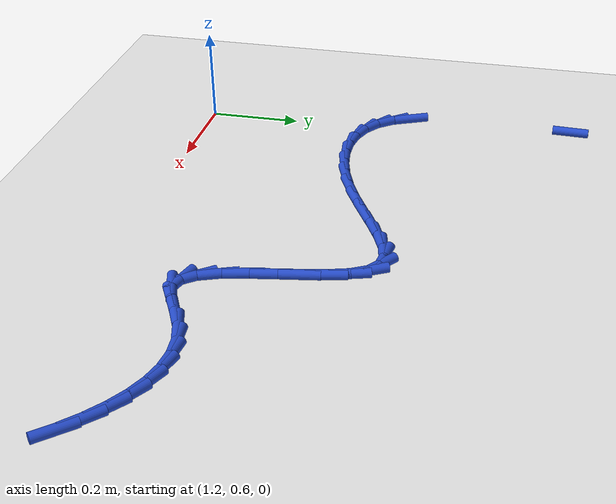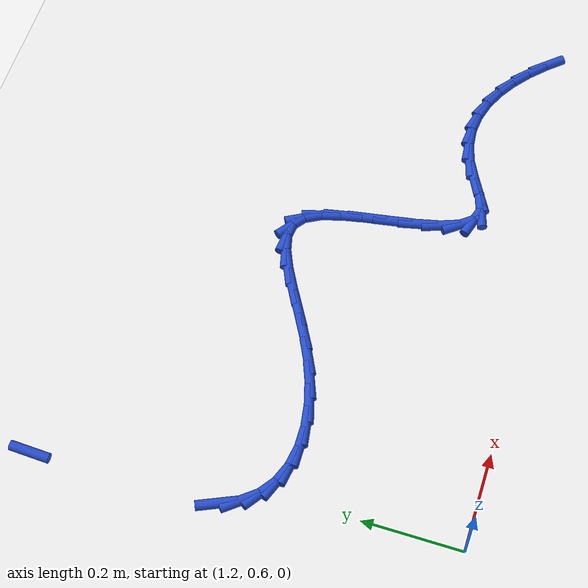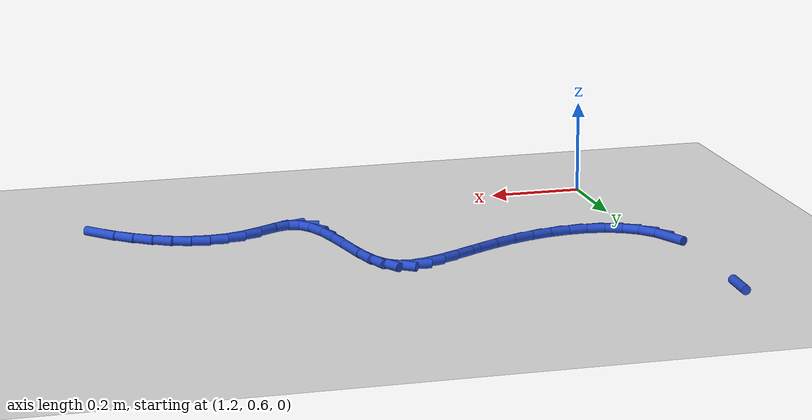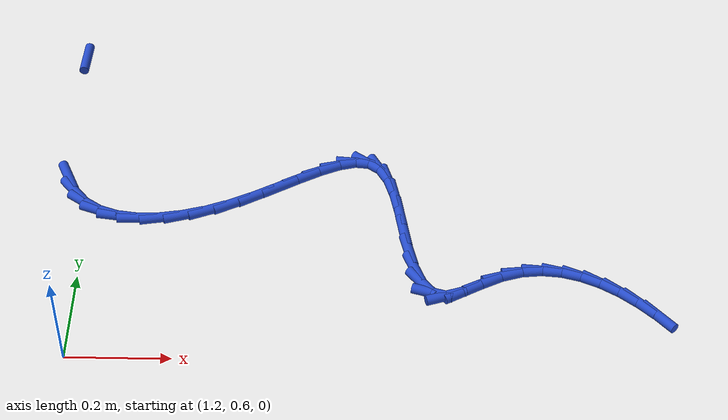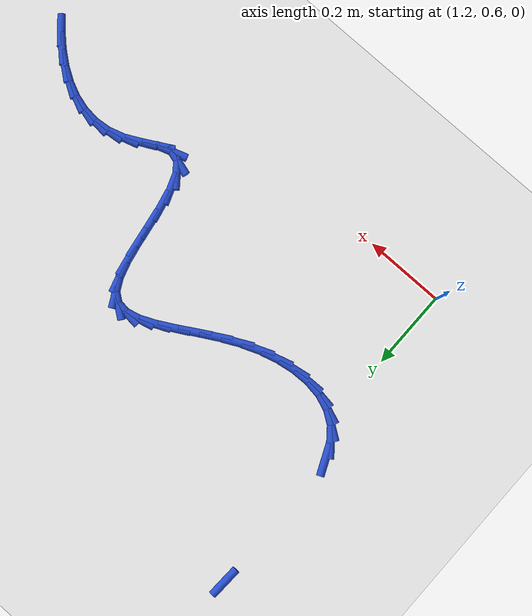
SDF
<sdf version="1.6">
 <world name="default">
  <model name="ground_plane">
   <static>1</static>
   <link name="link">
    <collision name="collision">
     <geometry><plane><normal>0 0 1</normal><size>100 100</size></plane></geometry>
     <surface><friction><ode><mu>100</mu><mu2>50</mu2></ode></friction></surface>
    </collision>
    <visual name="visual">
     <cast_shadows>0</cast_shadows>
     <geometry><plane><normal>0 0 1</normal><size>100 100</size></plane></geometry>
     <material>
      <script><uri>file://media/materials/scripts/gazebo.material</uri><name>Gazebo/WhiteGlow</name></script>
     </material>
    </visual>
   </link>
  </model>
  <model name="line">
   <link name="link_50">
    <pose>1.1397982147856793 1.4302542044344162 0.01 0 1.57 1.5299649811855243</pose>
    <collision name="collision">
     <geometry><cylinder><radius>0.01</radius><length>0.08</length></cylinder></geometry>
    </collision>
    <visual name="visual">
     <material>
      <script><name>Gazebo/Blue</name><uri>file://media/materials/scripts/gazebo.material</uri></script>
     </material>
     <geometry><cylinder><radius>0.01</radius><length>0.08</length></cylinder></geometry>
    </visual>
   </link>
   <link name="link_58">
    <pose>1.1491827335311606 1.0617973753093313 0.01 0 1.57 -1.15084781916414</pose>
    <collision name="collision">
     <geometry><cylinder><radius>0.01</radius><length>0.08</length></cylinder></geometry>
    </collision>
    <visual name="visual">
     <material>
      <script><name>Gazebo/Blue</name><uri>file://media/materials/scripts/gazebo.material</uri></script>
     </material>
     <geometry><cylinder><radius>0.01</radius><length>0.08</length></cylinder></geometry>
    </visual>
   </link>
   <link name="link_59">
    <pose>1.1669222420590948 1.0220681927908972 0.01 0 1.57 -0.893102407904086</pose>
    <collision name="collision">
     <geometry><cylinder><radius>0.01</radius><length>0.08</length></cylinder></geometry>
    </collision>
    <visual name="visual">
     <material>
      <script><name>Gazebo/Blue</name><uri>file://media/materials/scripts/gazebo.material</uri></script>
     </material>
     <geometry><cylinder><radius>0.01</radius><length>0.08</length></cylinder></geometry>
    </visual>
   </link>
   <link name="link_60">
    <pose>1.1917107442021784 0.991269450482976 0.01 0 1.57 -0.6149293826047683</pose>
    <collision name="collision">
     <geometry><cylinder><radius>0.01</radius><length>0.08</length></cylinder></geometry>
    </collision>
    <visual name="visual">
     <material>
      <script><name>Gazebo/Blue</name><uri>file://media/materials/scripts/gazebo.material</uri></script>
     </material>
     <geometry><cylinder><radius>0.01</radius><length>0.08</length></cylinder></geometry>
    </visual>
   </link>
   <link name="link_61">
    <pose>1.2228446530753259 0.9692801431016254 0.01 0 1.57 -0.36052347984355465</pose>
    <collision name="collision">
     <geometry><cylinder><radius>0.01</radius><length>0.08</length></cylinder></geometry>
    </collision>
    <visual name="visual">
     <material>
      <script><name>Gazebo/Blue</name><uri>file://media/materials/scripts/gazebo.material</uri></script>
     </material>
     <geometry><cylinder><radius>0.01</radius><length>0.08</length></cylinder></geometry>
    </visual>
   </link>
   <link name="link_62">
    <pose>1.2593010062048173 0.9555360755336589 0.01 0 1.57 -0.1476814513638622</pose>
    <collision name="collision">
     <geometry><cylinder><radius>0.01</radius><length>0.08</length></cylinder></geometry>
    </collision>
    <visual name="visual">
     <material>
      <script><name>Gazebo/Blue</name><uri>file://media/materials/scripts/gazebo.material</uri></script>
     </material>
     <geometry><cylinder><radius>0.01</radius><length>0.08</length></cylinder></geometry>
    </visual>
   </link>
   <link name="link_63">
    <pose>1.3000568411169346 0.9494730526658889 0.01 0 1.57 0.023928440807852468</pose>
    <collision name="collision">
     <geometry><cylinder><radius>0.01</radius><length>0.08</length></cylinder></geometry>
    </collision>
    <visual name="visual">
     <material>
      <script><name>Gazebo/Blue</name><uri>file://media/materials/scripts/gazebo.material</uri></script>
     </material>
     <geometry><cylinder><radius>0.01</radius><length>0.08</length></cylinder></geometry>
    </visual>
   </link>
   <link name="link_64">
    <pose>1.3440891953379583 0.9505268793851279 0.01 0 1.57 0.16288098369406465</pose>
    <collision name="collision">
     <geometry><cylinder><radius>0.01</radius><length>0.08</length></cylinder></geometry>
    </collision>
    <visual name="visual">
     <material>
      <script><name>Gazebo/Blue</name><uri>file://media/materials/scripts/gazebo.material</uri></script>
     </material>
     <geometry><cylinder><radius>0.01</radius><length>0.08</length></cylinder></geometry>
    </visual>
   </link>
   <link name="link_65">
    <pose>1.390375106394169 0.9581333605781887 0.01 0 1.57 0.2786653373070162</pose>
    <collision name="collision">
     <geometry><cylinder><radius>0.01</radius><length>0.08</length></cylinder></geometry>
    </collision>
    <visual name="visual">
     <material>
      <script><name>Gazebo/Blue</name><uri>file://media/materials/scripts/gazebo.material</uri></script>
     </material>
     <geometry><cylinder><radius>0.01</radius><length>0.08</length></cylinder></geometry>
    </visual>
   </link>
   <link name="link_66">
    <pose>1.437891611811849 0.9717283011318847 0.01 0 1.57 0.37923309288285934</pose>
    <collision name="collision">
     <geometry><cylinder><radius>0.01</radius><length>0.08</length></cylinder></geometry>
    </collision>
    <visual name="visual">
     <material>
      <script><name>Gazebo/Blue</name><uri>file://media/materials/scripts/gazebo.material</uri></script>
     </material>
     <geometry><cylinder><radius>0.01</radius><length>0.08</length></cylinder></geometry>
    </visual>
   </link>
   <link name="link_67">
    <pose>1.4856157495907836 0.9907475030734277 0.01 0 1.57 0.46410003968894264</pose>
    <collision name="collision">
     <geometry><cylinder><radius>0.01</radius><length>0.08</length></cylinder></geometry>
    </collision>
    <visual name="visual">
     <material>
      <script><name>Gazebo/Blue</name><uri>file://media/materials/scripts/gazebo.material</uri></script>
     </material>
     <geometry><cylinder><radius>0.01</radius><length>0.08</length></cylinder></geometry>
    </visual>
   </link>
   <link name="link_68">
    <pose>1.5325854659822682 1.0142589304577267 0.01 0 1.57 0.514105577774927</pose>
    <collision name="collision">
     <geometry><cylinder><radius>0.01</radius><length>0.08</length></cylinder></geometry>
    </collision>
    <visual name="visual">
     <material>
      <script><name>Gazebo/Blue</name><uri>file://media/materials/scripts/gazebo.material</uri></script>
     </material>
     <geometry><cylinder><radius>0.01</radius><length>0.08</length></cylinder></geometry>
    </visual>
   </link>
   <link name="link_69">
    <pose>1.5780680142461312 1.0399457132167835 0.01 0 1.57 0.5272373039017425</pose>
    <collision name="collision">
     <geometry><cylinder><radius>0.01</radius><length>0.08</length></cylinder></geometry>
    </collision>
    <visual name="visual">
     <material>
      <script><name>Gazebo/Blue</name><uri>file://media/materials/scripts/gazebo.material</uri></script>
     </material>
     <geometry><cylinder><radius>0.01</radius><length>0.08</length></cylinder></geometry>
    </visual>
   </link>
   <link name="link_70">
    <pose>1.6213846011531745 1.0651651444775267 0.01 0 1.57 0.49999067794593915</pose>
    <collision name="collision">
     <geometry><cylinder><radius>0.01</radius><length>0.08</length></cylinder></geometry>
    </collision>
    <visual name="visual">
     <material>
      <script><name>Gazebo/Blue</name><uri>file://media/materials/scripts/gazebo.material</uri></script>
     </material>
     <geometry><cylinder><radius>0.01</radius><length>0.08</length></cylinder></geometry>
    </visual>
   </link>
   <link name="link_71">
    <pose>1.6618564334741963 1.0872745173668839 0.01 0 1.57 0.41675768130560054</pose>
    <collision name="collision">
     <geometry><cylinder><radius>0.01</radius><length>0.08</length></cylinder></geometry>
    </collision>
    <visual name="visual">
     <material>
      <script><name>Gazebo/Blue</name><uri>file://media/materials/scripts/gazebo.material</uri></script>
     </material>
     <geometry><cylinder><radius>0.01</radius><length>0.08</length></cylinder></geometry>
    </visual>
   </link>
   <link name="link_72">
    <pose>1.6988047179799985 1.103631125011783 0.01 0 1.57 0.238491281110206</pose>
    <collision name="collision">
     <geometry><cylinder><radius>0.01</radius><length>0.08</length></cylinder></geometry>
    </collision>
    <visual name="visual">
     <material>
      <script><name>Gazebo/Blue</name><uri>file://media/materials/scripts/gazebo.material</uri></script>
     </material>
     <geometry><cylinder><radius>0.01</radius><length>0.08</length></cylinder></geometry>
    </visual>
   </link>
   <link name="link_73">
    <pose>1.7315506614413805 1.1115922605391524 0.01 0 1.57 -0.10998197587185295</pose>
    <collision name="collision">
     <geometry><cylinder><radius>0.01</radius><length>0.08</length></cylinder></geometry>
    </collision>
    <visual name="visual">
     <material>
      <script><name>Gazebo/Blue</name><uri>file://media/materials/scripts/gazebo.material</uri></script>
     </material>
     <geometry><cylinder><radius>0.01</radius><length>0.08</length></cylinder></geometry>
    </visual>
   </link>
   <link name="link_74">
    <pose>1.7594154706291425 1.1085152170759192 0.01 0 1.57 -0.6438925608933275</pose>
    <collision name="collision">
     <geometry><cylinder><radius>0.01</radius><length>0.08</length></cylinder></geometry>
    </collision>
    <visual name="visual">
     <material>
      <script><name>Gazebo/Blue</name><uri>file://media/materials/scripts/gazebo.material</uri></script>
     </material>
     <geometry><cylinder><radius>0.01</radius><length>0.08</length></cylinder></geometry>
    </visual>
   </link>
   <link name="link_75">
    <pose>1.7817245136449698 1.0917697856158797 0.01 0 1.57 -1.0768141675435978</pose>
    <collision name="collision">
     <geometry><cylinder><radius>0.01</radius><length>0.08</length></cylinder></geometry>
    </collision>
    <visual name="visual">
     <material>
      <script><name>Gazebo/Blue</name><uri>file://media/materials/scripts/gazebo.material</uri></script>
     </material>
     <geometry><cylinder><radius>0.01</radius><length>0.08</length></cylinder></geometry>
    </visual>
   </link>
   <link name="link_76">
    <pose>1.7984587988746232 1.060694863962529 0.01 0 1.57 -1.2811954678076198</pose>
    <collision name="collision">
     <geometry><cylinder><radius>0.01</radius><length>0.08</length></cylinder></geometry>
    </collision>
    <visual name="visual">
     <material>
      <script><name>Gazebo/Blue</name><uri>file://media/materials/scripts/gazebo.material</uri></script>
     </material>
     <geometry><cylinder><radius>0.01</radius><length>0.08</length></cylinder></geometry>
    </visual>
   </link>
   <link name="link_77">
    <pose>1.8109640203655113 1.0187279568761378 0.01 0 1.57 -1.3731996042182448</pose>
    <collision name="collision">
     <geometry><cylinder><radius>0.01</radius><length>0.08</length></cylinder></geometry>
    </collision>
    <visual name="visual">
     <material>
      <script><name>Gazebo/Blue</name><uri>file://media/materials/scripts/gazebo.material</uri></script>
     </material>
     <geometry><cylinder><radius>0.01</radius><length>0.08</length></cylinder></geometry>
    </visual>
   </link>
   <link name="link_78">
    <pose>1.8207562127648846 0.9698181588457734 0.01 0 1.57 -1.4066863656962887</pose>
    <collision name="collision">
     <geometry><cylinder><radius>0.01</radius><length>0.08</length></cylinder></geometry>
    </collision>
    <visual name="visual">
     <material>
      <script><name>Gazebo/Blue</name><uri>file://media/materials/scripts/gazebo.material</uri></script>
     </material>
     <geometry><cylinder><radius>0.01</radius><length>0.08</length></cylinder></geometry>
    </visual>
   </link>
   <link name="link_79">
    <pose>1.8293514107199944 0.9179145643605 0.01 0 1.57 -1.3975832974919924</pose>
    <collision name="collision">
     <geometry><cylinder><radius>0.01</radius><length>0.08</length></cylinder></geometry>
    </collision>
    <visual name="visual">
     <material>
      <script><name>Gazebo/Blue</name><uri>file://media/materials/scripts/gazebo.material</uri></script>
     </material>
     <geometry><cylinder><radius>0.01</radius><length>0.08</length></cylinder></geometry>
    </visual>
   </link>
   <link name="link_80">
    <pose>1.8382656488780913 0.8669662679093852 0.01 0 1.57 -1.3414462641711788</pose>
    <collision name="collision">
     <geometry><cylinder><radius>0.01</radius><length>0.08</length></cylinder></geometry>
    </collision>
    <visual name="visual">
     <material>
      <script><name>Gazebo/Blue</name><uri>file://media/materials/scripts/gazebo.material</uri></script>
     </material>
     <geometry><cylinder><radius>0.01</radius><length>0.08</length></cylinder></geometry>
    </visual>
   </link>
   <link name="link_81">
    <pose>1.8490149618864262 0.8209223639814942 0.01 0 1.57 -1.2083998922617682</pose>
    <collision name="collision">
     <geometry><cylinder><radius>0.01</radius><length>0.08</length></cylinder></geometry>
    </collision>
    <visual name="visual">
     <material>
      <script><name>Gazebo/Blue</name><uri>file://media/materials/scripts/gazebo.material</uri></script>
     </material>
     <geometry><cylinder><radius>0.01</radius><length>0.08</length></cylinder></geometry>
    </visual>
   </link>
   <link name="link_82">
    <pose>1.8631153843922497 0.7837319470658939 0.01 0 1.57 -0.9097723141863919</pose>
    <collision name="collision">
     <geometry><cylinder><radius>0.01</radius><length>0.08</length></cylinder></geometry>
    </collision>
    <visual name="visual">
     <material>
      <script><name>Gazebo/Blue</name><uri>file://media/materials/scripts/gazebo.material</uri></script>
     </material>
     <geometry><cylinder><radius>0.01</radius><length>0.08</length></cylinder></geometry>
    </visual>
   </link>
   <link name="link_83">
    <pose>1.8820829510428134 0.7593441116516495 0.01 0 1.57 -0.29257596940524266</pose>
    <collision name="collision">
     <geometry><cylinder><radius>0.01</radius><length>0.08</length></cylinder></geometry>
    </collision>
    <visual name="visual">
     <material>
      <script><name>Gazebo/Blue</name><uri>file://media/materials/scripts/gazebo.material</uri></script>
     </material>
     <geometry><cylinder><radius>0.01</radius><length>0.08</length></cylinder></geometry>
    </visual>
   </link>
   <link name="link_84">
    <pose>1.9074336964853662 0.7517079522278273 0.01 0 1.57 0.317476641375754</pose>
    <collision name="collision">
     <geometry><cylinder><radius>0.01</radius><length>0.08</length></cylinder></geometry>
    </collision>
    <visual name="visual">
     <material>
      <script><name>Gazebo/Blue</name><uri>file://media/materials/scripts/gazebo.material</uri></script>
     </material>
     <geometry><cylinder><radius>0.01</radius><length>0.08</length></cylinder></geometry>
    </visual>
   </link>
   <link name="link_85">
    <pose>1.9399479963916646 0.7623918672602029 0.01 0 1.57 0.5046893257557312</pose>
    <collision name="collision">
     <geometry><cylinder><radius>0.01</radius><length>0.08</length></cylinder></geometry>
    </collision>
    <visual name="visual">
     <material>
      <script><name>Gazebo/Blue</name><uri>file://media/materials/scripts/gazebo.material</uri></script>
     </material>
     <geometry><cylinder><radius>0.01</radius><length>0.08</length></cylinder></geometry>
    </visual>
   </link>
   <link name="link_86">
    <pose>1.9773422198398476 0.7830486984746626 0.01 0 1.57 0.4665532538435204</pose>
    <collision name="collision">
     <geometry><cylinder><radius>0.01</radius><length>0.08</length></cylinder></geometry>
    </collision>
    <visual name="visual">
     <material>
      <script><name>Gazebo/Blue</name><uri>file://media/materials/scripts/gazebo.material</uri></script>
     </material>
     <geometry><cylinder><radius>0.01</radius><length>0.08</length></cylinder></geometry>
    </visual>
   </link>
   <link name="link_87">
    <pose>2.016546208608449 0.8027932915155226 0.01 0 1.57 0.2948220575352683</pose>
    <collision name="collision">
     <geometry><cylinder><radius>0.01</radius><length>0.08</length></cylinder></geometry>
    </collision>
    <visual name="visual">
     <material>
      <script><name>Gazebo/Blue</name><uri>file://media/materials/scripts/gazebo.material</uri></script>
     </material>
     <geometry><cylinder><radius>0.01</radius><length>0.08</length></cylinder></geometry>
    </visual>
   </link>
   <link name="link_88">
    <pose>2.055484530924023 0.8146177641858502 0.01 0 1.57 0.09863700381746601</pose>
    <collision name="collision">
     <geometry><cylinder><radius>0.01</radius><length>0.08</length></cylinder></geometry>
    </collision>
    <visual name="visual">
     <material>
      <script><name>Gazebo/Blue</name><uri>file://media/materials/scripts/gazebo.material</uri></script>
     </material>
     <geometry><cylinder><radius>0.01</radius><length>0.08</length></cylinder></geometry>
    </visual>
   </link>
   <link name="link_89">
    <pose>2.0938520515588044 0.8184145427392153 0.01 0 1.57 -0.09597881821380291</pose>
    <collision name="collision">
     <geometry><cylinder><radius>0.01</radius><length>0.08</length></cylinder></geometry>
    </collision>
    <visual name="visual">
     <material>
      <script><name>Gazebo/Blue</name><uri>file://media/materials/scripts/gazebo.material</uri></script>
     </material>
     <geometry><cylinder><radius>0.01</radius><length>0.08</length></cylinder></geometry>
    </visual>
   </link>
   <link name="link_90">
    <pose>2.1315261547444457 0.8147874825799951 0.01 0 1.57 -0.27619555866514867</pose>
    <collision name="collision">
     <geometry><cylinder><radius>0.01</radius><length>0.08</length></cylinder></geometry>
    </collision>
    <visual name="visual">
     <material>
      <script><name>Gazebo/Blue</name><uri>file://media/materials/scripts/gazebo.material</uri></script>
     </material>
     <geometry><cylinder><radius>0.01</radius><length>0.08</length></cylinder></geometry>
    </visual>
   </link>
   <link name="link_91">
    <pose>2.168384224712594 0.8043404391125665 0.01 0 1.57 -0.4343563364327247</pose>
    <collision name="collision">
     <geometry><cylinder><radius>0.01</radius><length>0.08</length></cylinder></geometry>
    </collision>
    <visual name="visual">
     <material>
      <script><name>Gazebo/Blue</name><uri>file://media/materials/scripts/gazebo.material</uri></script>
     </material>
     <geometry><cylinder><radius>0.01</radius><length>0.08</length></cylinder></geometry>
    </visual>
   </link>
   <link name="link_92">
    <pose>2.204303645694902 0.7876772677413068 0.01 0 1.57 -0.5686254888740794</pose>
    <collision name="collision">
     <geometry><cylinder><radius>0.01</radius><length>0.08</length></cylinder></geometry>
    </collision>
    <visual name="visual">
     <material>
      <script><name>Gazebo/Blue</name><uri>file://media/materials/scripts/gazebo.material</uri></script>
     </material>
     <geometry><cylinder><radius>0.01</radius><length>0.08</length></cylinder></geometry>
    </visual>
   </link>
   <link name="link_93">
    <pose>2.2391618019230175 0.7654018238705927 0.01 0 1.57 -0.6809468433346968</pose>
    <collision name="collision">
     <geometry><cylinder><radius>0.01</radius><length>0.08</length></cylinder></geometry>
    </collision>
    <visual name="visual">
     <material>
      <script><name>Gazebo/Blue</name><uri>file://media/materials/scripts/gazebo.material</uri></script>
     </material>
     <geometry><cylinder><radius>0.01</radius><length>0.08</length></cylinder></geometry>
    </visual>
   </link>
   <link name="link_94">
    <pose>2.272836077628592 0.7381179629048016 0.01 0 1.57 -0.7747929250800714</pose>
    <collision name="collision">
     <geometry><cylinder><radius>0.01</radius><length>0.08</length></cylinder></geometry>
    </collision>
    <visual name="visual">
     <material>
      <script><name>Gazebo/Blue</name><uri>file://media/materials/scripts/gazebo.material</uri></script>
     </material>
     <geometry><cylinder><radius>0.01</radius><length>0.08</length></cylinder></geometry>
    </visual>
   </link>
   <link name="link_95">
    <pose>2.305203857043274 0.7064295402483108 0.01 0 1.57 -0.8537936848527369</pose>
    <collision name="collision">
     <geometry><cylinder><radius>0.01</radius><length>0.08</length></cylinder></geometry>
    </collision>
    <visual name="visual">
     <material>
      <script><name>Gazebo/Blue</name><uri>file://media/materials/scripts/gazebo.material</uri></script>
     </material>
     <geometry><cylinder><radius>0.01</radius><length>0.08</length></cylinder></geometry>
    </visual>
   </link>
  </model>
 </world>
</sdf>
